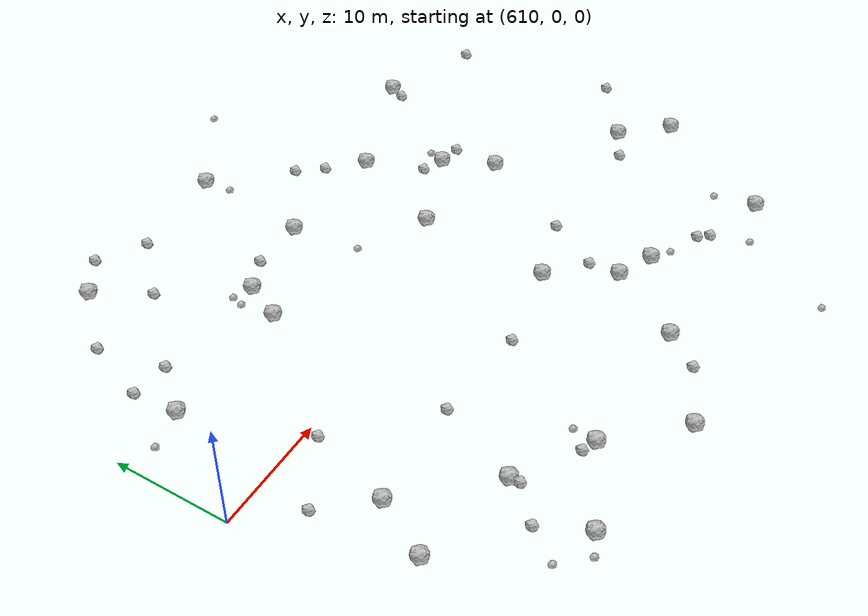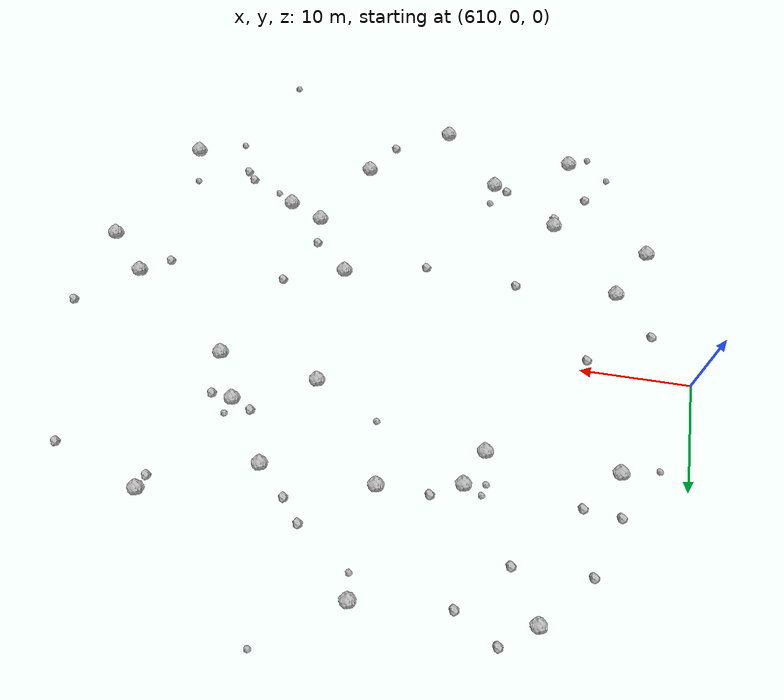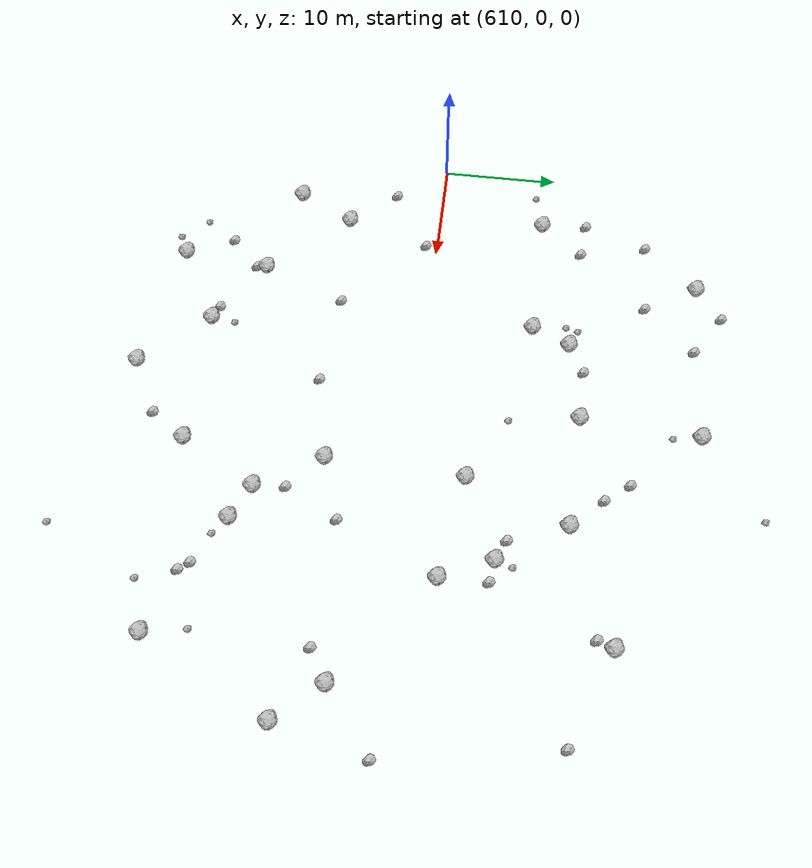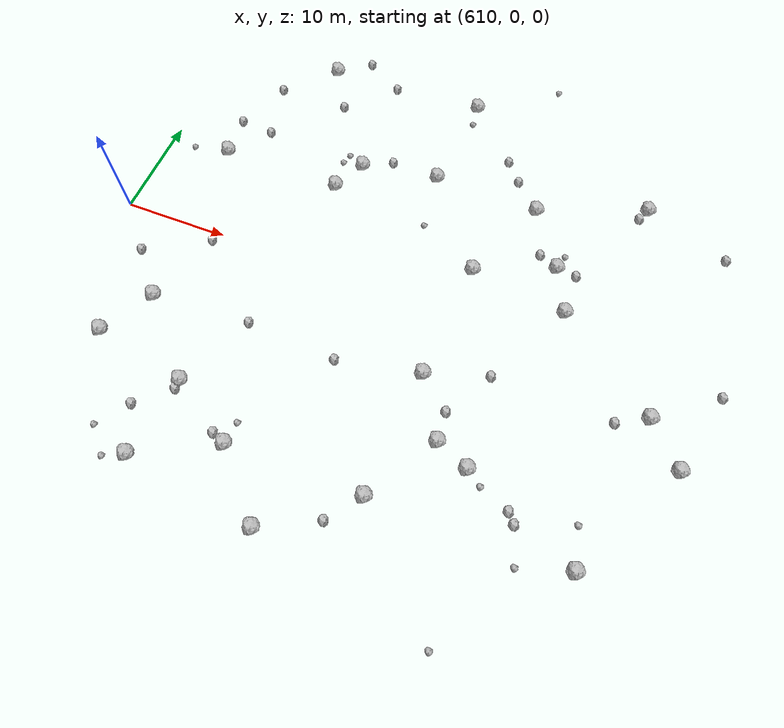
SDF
<sdf version="1.6">
 <world name="default">
  <include><uri>model://sun</uri></include>
  <model name="rock1_16_3">
   <include><uri>model://rock1</uri><pose>614.6033785286671 -12.913292243958601 0.5 0 0 0</pose></include>
  </model>
  <model name="rock1_16_4">
   <include><uri>model://rock1</uri><pose>627.6335660943478 9.111692907506615 0.5 0 0 0</pose></include>
  </model>
  <model name="rock1_16_5">
   <include><uri>model://rock1</uri><pose>617.226789761762 -8.129461409744604 0.5 0 0 0</pose></include>
  </model>
  <model name="rock1_16_6">
   <include><uri>model://rock1</uri><pose>650.5066570377951 7.715562293855683 0.5 0 0 0</pose></include>
  </model>
  <model name="rock1_16_7">
   <include><uri>model://rock1</uri><pose>629.7441911562245 -18.444770157262038 0.5 0 0 0</pose></include>
  </model>
  <model name="rock1_16_8">
   <include><uri>model://rock1</uri><pose>652.5135953271388 3.490254295534527 0.5 0 0 0</pose></include>
  </model>
  <model name="rock1_16_9">
   <include><uri>model://rock1</uri><pose>623.5723505628703 -14.706769893489547 0.5 0 0 0</pose></include>
  </model>
  <model name="rock1_16_10">
   <include><uri>model://rock1</uri><pose>662.0027693981021 -3.6802381094239323 0.5 0 0 0</pose></include>
  </model>
  <model name="rock1_16_11">
   <include><uri>model://rock1</uri><pose>665.3293135169633 -7.2889153550797445 0.5 0 0 0</pose></include>
  </model>
  <model name="rock1_16_12">
   <include><uri>model://rock1</uri><pose>656.8608189685079 17.073662892883718 0.5 0 0 0</pose></include>
  </model>
  <model name="rock1_16_13">
   <include><uri>model://rock1</uri><pose>637.3474549419295 23.526056873836353 0.5 0 0 0</pose></include>
  </model>
  <model name="rock1_16_14">
   <include><uri>model://rock1</uri><pose>634.9683289249194 -23.8325917118038 0.5 0 0 0</pose></include>
  </model>
  <model name="rock1_16_15">
   <include><uri>model://rock1</uri><pose>636.5769015431988 13.57777402003319 0.5 0 0 0</pose></include>
  </model>
  <model name="rock1_16_16">
   <include><uri>model://rock1</uri><pose>642.7833066111027 -6.6536603953012055 0.5 0 0 0</pose></include>
  </model>
  <model name="rock1_16_17">
   <include><uri>model://rock1</uri><pose>621.8037301896371 23.050455738515808 0.5 0 0 0</pose></include>
  </model>
  <model name="rock1_16_18">
   <include><uri>model://rock1</uri><pose>643.327953401646 4.792741034912851 0.5 0 0 0</pose></include>
  </model>
  <model name="rock1_16_19">
   <include><uri>model://rock1</uri><pose>646.081086933517 -11.946214160365212 0.5 0 0 0</pose></include>
  </model>
  <model name="rock1_16_20">
   <include><uri>model://rock1</uri><pose>622.6928255647434 -22.104103679265663 0.5 0 0 0</pose></include>
  </model>
  <model name="rock1_16_21">
   <include><uri>model://rock1</uri><pose>649.1605213632251 -13.282808662303236 0.5 0 0 0</pose></include>
  </model>
  <model name="rock1_16_22">
   <include><uri>model://rock1</uri><pose>615.8720627419298 9.225192754185763 0.5 0 0 0</pose></include>
  </model>
  <model name="rock1_16_23">
   <include><uri>model://rock1</uri><pose>642.2144209594373 -18.354196470503616 0.5 0 0 0</pose></include>
  </model>
  <model name="rock1_16_24">
   <include><uri>model://rock1</uri><pose>629.1681653757287 12.318724554979198 0.5 0 0 0</pose></include>
  </model>
  <model name="rock1_16_25">
   <include><uri>model://rock1</uri><pose>659.5867284697911 -17.980585022060595 0.5 0 0 0</pose></include>
  </model>
  <model name="rock1_16_26">
   <include><uri>model://rock1</uri><pose>646.8322604713492 13.257115104700738 0.5 0 0 0</pose></include>
  </model>
  <model name="rock2_16_0">
   <include><uri>model://rock2</uri><pose>617.5509481063843 18.528200165280367 0.3 0 0 0</pose></include>
  </model>
  <model name="rock2_16_1">
   <include><uri>model://rock2</uri><pose>623.5809723639172 -15.561371902873383 0.3 0 0 0</pose></include>
  </model>
  <model name="rock2_16_2">
   <include><uri>model://rock2</uri><pose>628.6600970022554 22.904227099277655 0.3 0 0 0</pose></include>
  </model>
  <model name="rock2_16_3">
   <include><uri>model://rock2</uri><pose>619.4462861931878 -0.957807106029243 0.3 0 0 0</pose></include>
  </model>
  <model name="rock2_16_4">
   <include><uri>model://rock2</uri><pose>659.3103487777624 -5.170421014274268 0.3 0 0 0</pose></include>
  </model>
  <model name="rock2_16_5">
   <include><uri>model://rock2</uri><pose>620.7930490859326 -18.108172988358163 0.3 0 0 0</pose></include>
  </model>
  <model name="rock2_16_6">
   <include><uri>model://rock2</uri><pose>645.842370208665 -9.286975074296556 0.3 0 0 0</pose></include>
  </model>
  <model name="rock2_16_7">
   <include><uri>model://rock2</uri><pose>624.43188173257 18.65971642952912 0.3 0 0 0</pose></include>
  </model>
  <model name="rock2_16_8">
   <include><uri>model://rock2</uri><pose>631.8938926915611 13.682038350413094 0.3 0 0 0</pose></include>
  </model>
  <model name="rock2_16_9">
   <include><uri>model://rock2</uri><pose>618.8573704742003 12.85298401453555 0.3 0 0 0</pose></include>
  </model>
  <model name="rock2_16_10">
   <include><uri>model://rock2</uri><pose>635.1365716603581 -8.206682462291994 0.3 0 0 0</pose></include>
  </model>
  <model name="rock2_16_11">
   <include><uri>model://rock2</uri><pose>628.4547737703891 -17.93643749862853 0.3 0 0 0</pose></include>
  </model>
  <model name="rock2_16_12">
   <include><uri>model://rock2</uri><pose>654.0917145568797 -16.269592829929692 0.3 0 0 0</pose></include>
  </model>
  <model name="rock2_16_13">
   <include><uri>model://rock2</uri><pose>639.999719331576 -21.325809068070235 0.3 0 0 0</pose></include>
  </model>
  <model name="rock2_16_14">
   <include><uri>model://rock2</uri><pose>652.4176152515065 7.473597397814139 0.3 0 0 0</pose></include>
  </model>
  <model name="rock2_16_15">
   <include><uri>model://rock2</uri><pose>626.5765347478354 -7.5991403893423275 0.3 0 0 0</pose></include>
  </model>
  <model name="rock2_16_16">
   <include><uri>model://rock2</uri><pose>644.2200635659171 15.885051971734754 0.3 0 0 0</pose></include>
  </model>
  <model name="rock2_16_17">
   <include><uri>model://rock2</uri><pose>613.7356393892527 -4.221625991398639 0.3 0 0 0</pose></include>
  </model>
  <model name="rock2_16_18">
   <include><uri>model://rock2</uri><pose>642.570126595487 17.909827496533964 0.3 0 0 0</pose></include>
  </model>
  <model name="rock2_16_19">
   <include><uri>model://rock2</uri><pose>656.2871075881276 15.802161430418685 0.3 0 0 0</pose></include>
  </model>
  <model name="rock2_16_20">
   <include><uri>model://rock2</uri><pose>667.298476002255 0.29713074925024685 0.3 0 0 0</pose></include>
  </model>
  <model name="rock2_16_21">
   <include><uri>model://rock2</uri><pose>624.8479799874599 25.217409521427058 0.3 0 0 0</pose></include>
  </model>
  <model name="rock2_16_22">
   <include><uri>model://rock2</uri><pose>664.9177974651615 14.08073401170325 0.3 0 0 0</pose></include>
  </model>
  <model name="rock2_16_23">
   <include><uri>model://rock2</uri><pose>653.3752543273666 -15.423616686362124 0.3 0 0 0</pose></include>
  </model>
  <model name="rock2_16_24">
   <include><uri>model://rock2</uri><pose>615.5381382504489 13.158194585736815 0.3 0 0 0</pose></include>
  </model>
  <model name="rock2_16_25">
   <include><uri>model://rock2</uri><pose>648.3518331865487 -4.83742202230323 0.3 0 0 0</pose></include>
  </model>
  <model name="rock2_16_26">
   <include><uri>model://rock2</uri><pose>648.6788243922618 8.52878729861029 0.3 0 0 0</pose></include>
  </model>
  <model name="rock3_16_0">
   <include><uri>model://rock3</uri><pose>637.3784717047893 7.774896057704737 0.2 0 0 0</pose></include>
  </model>
  <model name="rock3_16_1">
   <include><uri>model://rock3</uri><pose>655.1328366557453 -19.417676221858194 0.2 0 0 0</pose></include>
  </model>
  <model name="rock3_16_2">
   <include><uri>model://rock3</uri><pose>658.8283202120064 -14.512512741699354 0.2 0 0 0</pose></include>
  </model>
  <model name="rock3_16_3">
   <include><uri>model://rock3</uri><pose>627.1997101055358 11.995955272426613 0.2 0 0 0</pose></include>
  </model>
  <model name="rock3_16_4">
   <include><uri>model://rock3</uri><pose>612.4633577264239 8.481147073541834 0.2 0 0 0</pose></include>
  </model>
  <model name="rock3_16_5">
   <include><uri>model://rock3</uri><pose>629.9099749850692 -16.436948870282855 0.2 0 0 0</pose></include>
  </model>
  <model name="rock3_16_6">
   <include><uri>model://rock3</uri><pose>620.8090429408549 -22.996496521871943 0.2 0 0 0</pose></include>
  </model>
  <model name="rock3_16_7">
   <include><uri>model://rock3</uri><pose>644.5968685593997 28.476649647415584 0.2 0 0 0</pose></include>
  </model>
  <model name="rock3_16_8">
   <include><uri>model://rock3</uri><pose>637.5981521622438 21.234285464816885 0.2 0 0 0</pose></include>
  </model>
  <model name="rock3_16_9">
   <include><uri>model://rock3</uri><pose>651.11165045562 -27.337507621697558 0.2 0 0 0</pose></include>
  </model>
  <model name="rock3_16_10">
   <include><uri>model://rock3</uri><pose>650.8943103127613 9.133965002662364 0.2 0 0 0</pose></include>
  </model>
  <model name="rock3_16_11">
   <include><uri>model://rock3</uri><pose>627.4820561554196 13.005499532588821 0.2 0 0 0</pose></include>
  </model>
  <model name="rock3_16_12">
   <include><uri>model://rock3</uri><pose>618.7878505322523 -20.85078767993933 0.2 0 0 0</pose></include>
  </model>
  <model name="rock3_16_13">
   <include><uri>model://rock3</uri><pose>650.6186535757256 -14.342407484862804 0.2 0 0 0</pose></include>
  </model>
 </world>
</sdf>
